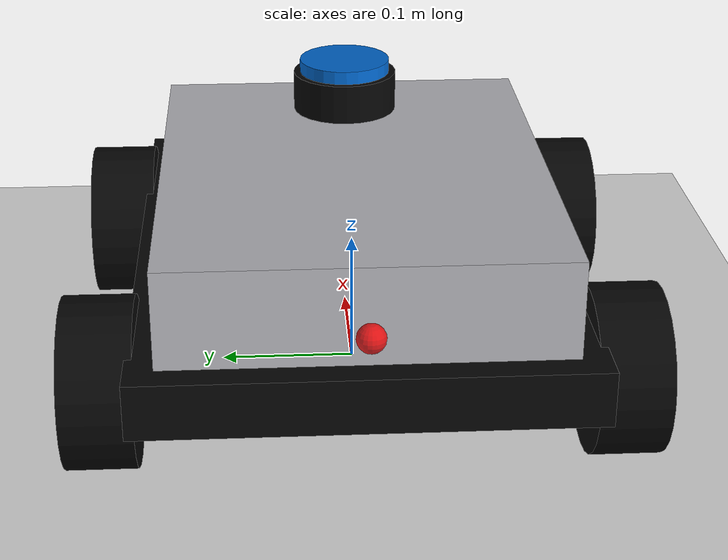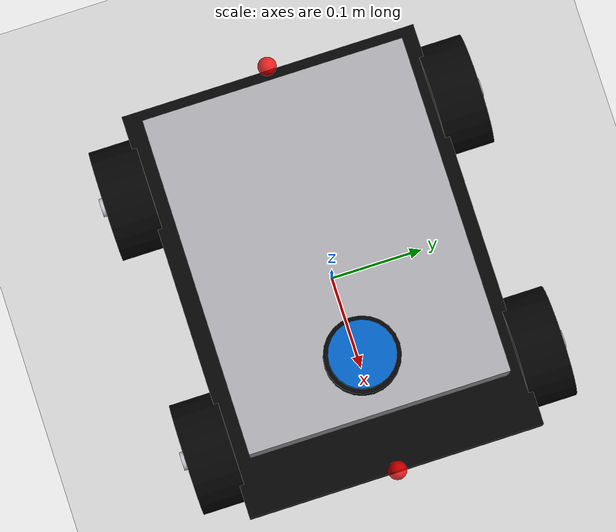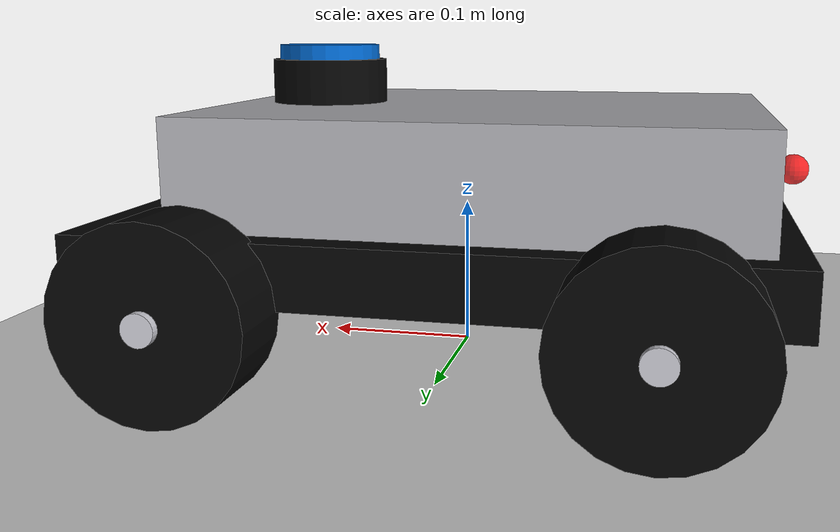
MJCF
<mujoco model="smart_car_standalone">
  <compiler angle="degree" coordinate="local" inertiafromgeom="true" autolimits="true"/>
  <option timestep="0.002" gravity="0 0 -9.81"/>

  <asset>
    <texture name="tex_floor" type="2d" builtin="checker" rgb1="0.8 0.8 0.8" rgb2="0.9 0.9 0.9" width="512" height="512" mark="edge" markrgb="0.6 0.6 0.6"/>
    <material name="mat_floor" texture="tex_floor" texrepeat="10 10" reflectance="0.1"/>

    <!-- Car Materials -->
    <material name="piano_black" rgba="0.02 0.02 0.02 1" specular="1" shininess="1" reflectance="0.5"/>
    <material name="laptop_silver" rgba="0.7 0.7 0.72 1" shininess="0.9"/>
    <material name="sensor_blue" rgba="0 0.4 0.8 1" emission="0.5"/>
    <material name="laser_red" rgba="1 0 0 0.8" emission="1"/>
    <material name="handle_silver" rgba="0.8 0.8 0.83 1" specular="1" shininess="1"/>
  </asset>

  <worldbody>
    <light directional="true" pos="0 0 5" dir="0 0 -1" diffuse="0.8 0.8 0.8"/>
    <geom name="floor" type="plane" pos="0 0 0" size="10 10 0.1" material="mat_floor"/>

    <!-- Smart Car (Extracted from formatted (8)(1)(1).xml) -->
    <!-- Adjusted pos to be on ground (Wheel radius 0.06 - 0.02 offset = 0.04 height? No, let's verify) -->
    <!-- Original pos was 0 -1.5 0.15. Wheel radius 0.06. -->
    <body name="smart_car" pos="0 0 0.08">
      <freejoint name="car_joint"/>
      <geom name="car_chassis" type="box" size="0.22 0.16 0.02" pos="0 0 0" material="piano_black"/>
      <geom name="car_body_upper" type="box" size="0.18 0.14 0.04" pos="-0.02 0 0.05" material="laptop_silver"/>
      <geom name="car_sensor_mount" type="cylinder" size="0.04 0.02" pos="0.1 0 0.1" material="piano_black"/>
      <geom name="car_sensor_lens" type="cylinder" size="0.035 0.01" pos="0.1 0 0.12" material="sensor_blue"/>

      <site name="obstacle_sensor_site" pos="0.22 0 0.05" size="0.01" material="laser_red"/>
      <site name="rear_sensor_site" pos="-0.22 0 0.05" euler="0 0 180" size="0.01" material="laser_red"/>

      <body name="wheel_fl" pos="0.14 0.18 -0.02">
        <joint name="joint_fl" type="hinge" axis="0 1 0"/>
        <geom name="axle_fl" type="cylinder" size="0.01 0.03" euler="90 0 0" material="handle_silver"/>
        <geom type="cylinder" size="0.06 0.025" euler="90 0 0" material="piano_black" friction="1.0"/>
      </body>
      <body name="wheel_fr" pos="0.14 -0.18 -0.02">
        <joint name="joint_fr" type="hinge" axis="0 1 0"/>
        <geom name="axle_fr" type="cylinder" size="0.01 0.03" euler="90 0 0" material="handle_silver"/>
        <geom type="cylinder" size="0.06 0.025" euler="90 0 0" material="piano_black" friction="1.0"/>
      </body>
      <body name="wheel_bl" pos="-0.14 0.18 -0.02">
        <joint name="joint_bl" type="hinge" axis="0 1 0"/>
        <geom name="axle_bl" type="cylinder" size="0.01 0.03" euler="90 0 0" material="handle_silver"/>
        <geom type="cylinder" size="0.06 0.025" euler="90 0 0" material="piano_black" friction="1.0"/>
      </body>
      <body name="wheel_br" pos="-0.14 -0.18 -0.02">
        <joint name="joint_br" type="hinge" axis="0 1 0"/>
        <geom name="axle_br" type="cylinder" size="0.01 0.03" euler="90 0 0" material="handle_silver"/>
        <geom type="cylinder" size="0.06 0.025" euler="90 0 0" material="piano_black" friction="1.0"/>
      </body>
    </body>
  </worldbody>

  <sensor>
    <rangefinder name="forward_dist" site="obstacle_sensor_site"/>
    <rangefinder name="rear_dist" site="rear_sensor_site"/>
  </sensor>

  <actuator>
    <motor name="drive_fl" joint="joint_fl" gear="50"/>
    <motor name="drive_fr" joint="joint_fr" gear="50"/>
    <motor name="drive_bl" joint="joint_bl" gear="50"/>
    <motor name="drive_br" joint="joint_br" gear="50"/>
  </actuator>
</mujoco>
